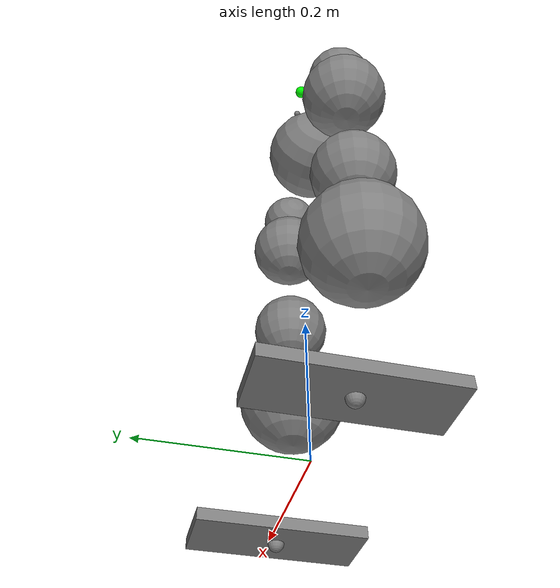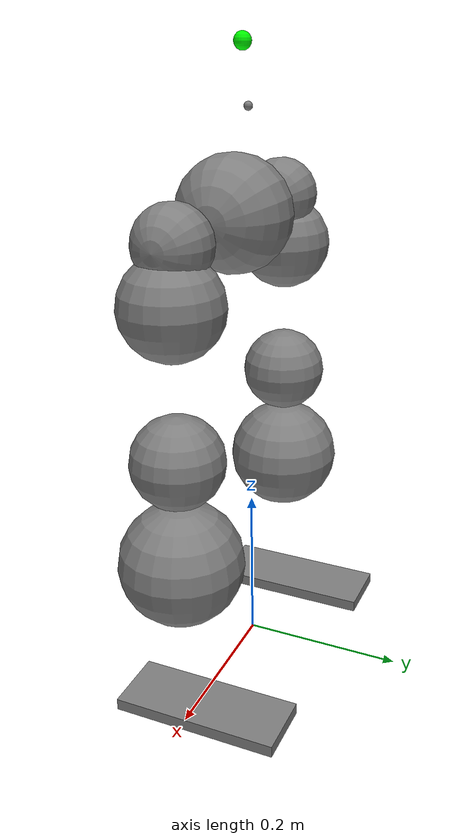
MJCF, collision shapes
<mujoco model="ch_robot_16kg_actuated">
  <compiler angle="radian"/>

  <option timestep="0.005" integrator="implicitfast" cone="elliptic"/>

  <default>
    <joint limited="true" damping="1"/>
    <default class="visual">
      <geom type="mesh" contype="0" conaffinity="0" group="2"/>
    </default>
    <default class="collision">
      <geom group="3"/>
    </default>
  </default>

  <asset>
    <material name="metal_silver" specular="1" shininess="1" reflectance="0.5" rgba="0.55 0.55 0.6 1"/>
    <mesh name="hip" file="/home/thewheelneedsme/Projects/droids/simulation/mjlab/src/mjlab/asset_zoo/robots/triton_robot/meshes/hip_ch.stl" scale="0.001 0.001 0.001"/>
    <mesh name="left_leg1" file="/home/thewheelneedsme/Projects/droids/simulation/mjlab/src/mjlab/asset_zoo/robots/triton_robot/meshes/left_leg1_ch.stl" scale="0.001 0.001 0.001"/>
    <mesh name="left_leg2" file="/home/thewheelneedsme/Projects/droids/simulation/mjlab/src/mjlab/asset_zoo/robots/triton_robot/meshes/left_leg2_ch.stl" scale="0.001 0.001 0.001"/>
    <mesh name="left_leg3" file="/home/thewheelneedsme/Projects/droids/simulation/mjlab/src/mjlab/asset_zoo/robots/triton_robot/meshes/left_leg3_ch.stl" scale="0.001 0.001 0.001"/>
    <mesh name="left_leg4" file="/home/thewheelneedsme/Projects/droids/simulation/mjlab/src/mjlab/asset_zoo/robots/triton_robot/meshes/left_leg4_ch.stl" scale="0.001 0.001 0.001"/>
    <mesh name="right_leg1" file="/home/thewheelneedsme/Projects/droids/simulation/mjlab/src/mjlab/asset_zoo/robots/triton_robot/meshes/right_leg1_ch.stl" scale="0.001 0.001 0.001"/>
    <mesh name="right_leg2" file="/home/thewheelneedsme/Projects/droids/simulation/mjlab/src/mjlab/asset_zoo/robots/triton_robot/meshes/right_leg2_ch.stl" scale="0.001 0.001 0.001"/>
    <mesh name="right_leg3" file="/home/thewheelneedsme/Projects/droids/simulation/mjlab/src/mjlab/asset_zoo/robots/triton_robot/meshes/right_leg3_ch.stl" scale="0.001 0.001 0.001"/>
    <mesh name="right_leg4" file="/home/thewheelneedsme/Projects/droids/simulation/mjlab/src/mjlab/asset_zoo/robots/triton_robot/meshes/right_leg4_ch.stl" scale="0.001 0.001 0.001"/>
    <mesh name="hip_visual" file="/home/thewheelneedsme/Projects/droids/simulation/mjlab/src/mjlab/asset_zoo/robots/triton_robot/meshes/visual/hip_dumb2.stl" scale="0.001 0.001 0.001"/>
    <mesh name="left_leg1_visual" file="/home/thewheelneedsme/Projects/droids/simulation/mjlab/src/mjlab/asset_zoo/robots/triton_robot/meshes/visual/left_leg1_dumb.stl" scale="0.001 0.001 0.001"/>
    <mesh name="left_leg2_visual" file="/home/thewheelneedsme/Projects/droids/simulation/mjlab/src/mjlab/asset_zoo/robots/triton_robot/meshes/visual/left_leg2_dumb.stl" scale="0.001 0.001 0.001"/>
    <mesh name="left_leg3_visual" file="/home/thewheelneedsme/Projects/droids/simulation/mjlab/src/mjlab/asset_zoo/robots/triton_robot/meshes/visual/left_leg3_dumb.stl" scale="0.001 0.001 0.001"/>
    <mesh name="left_leg4_visual" file="/home/thewheelneedsme/Projects/droids/simulation/mjlab/src/mjlab/asset_zoo/robots/triton_robot/meshes/visual/left_leg4_dumb.stl" scale="0.001 0.001 0.001"/>
    <mesh name="left_foot_visual" file="/home/thewheelneedsme/Projects/droids/simulation/mjlab/src/mjlab/asset_zoo/robots/triton_robot/meshes/visual/left_foot.stl" scale="0.001 0.001 0.001"/>
    <mesh name="left_foot_sole_visual" file="/home/thewheelneedsme/Projects/droids/simulation/mjlab/src/mjlab/asset_zoo/robots/triton_robot/meshes/visual/left_foot_sole.stl" scale="0.001 0.001 0.001"/>
    <mesh name="right_leg1_visual" file="/home/thewheelneedsme/Projects/droids/simulation/mjlab/src/mjlab/asset_zoo/robots/triton_robot/meshes/visual/right_leg1_dumb.stl" scale="0.001 0.001 0.001"/>
    <mesh name="right_leg2_visual" file="/home/thewheelneedsme/Projects/droids/simulation/mjlab/src/mjlab/asset_zoo/robots/triton_robot/meshes/visual/right_leg2_dumb.stl" scale="0.001 0.001 0.001"/>
    <mesh name="right_leg3_visual" file="/home/thewheelneedsme/Projects/droids/simulation/mjlab/src/mjlab/asset_zoo/robots/triton_robot/meshes/visual/right_leg3_dumb.stl" scale="0.001 0.001 0.001"/>
    <mesh name="right_leg4_visual" file="/home/thewheelneedsme/Projects/droids/simulation/mjlab/src/mjlab/asset_zoo/robots/triton_robot/meshes/visual/right_leg4_dumb.stl" scale="0.001 0.001 0.001"/>
    <mesh name="right_foot_visual" file="/home/thewheelneedsme/Projects/droids/simulation/mjlab/src/mjlab/asset_zoo/robots/triton_robot/meshes/visual/right_foot.stl" scale="0.001 0.001 0.001"/>
    <mesh name="right_foot_sole_visual" file="/home/thewheelneedsme/Projects/droids/simulation/mjlab/src/mjlab/asset_zoo/robots/triton_robot/meshes/visual/right_foot_sole.stl" scale="0.001 0.001 0.001"/>
  </asset>

  <worldbody>
    <body name="floating_base" pos="0 0 0.6846">
      <joint type="free" damping="0"/>
      <site name="imu" pos="0 0 0"/>
      <body name="torso" pos="0.1505 0.008 -0.6996">
        <inertial pos="-0.156928 -0.029496 0.666" mass="0.001" diaginertia="1e-06 1e-06 1e-06"/>
        <site name="top" pos="-0.155 -0.016 0.765" size="0.01" rgba="0 1 0 1"/>
        <body name="hip">
          <inertial pos="-0.155587 -0.02906 0.584318" quat="-0.0033003 0.706961 -0.0187819 0.706995" mass="3.46459" diaginertia="0.0169039 0.0159646 0.0104736"/>
          <geom class="collision" size="0.0695385" pos="-0.155593 -0.0294944 0.580198" quat="-4.77528e-05 0.707672 -4.78292e-05 0.706541"/>
          <geom class="visual" material="metal_silver" mesh="hip_visual"/>
          <body name="left_leg1">
            <inertial pos="-0.005945 -0.035287 0.577433" quat="0.0533097 0.705768 -0.0521611 0.704506" mass="1.17519" diaginertia="0.00181998 0.00169022 0.00139371"/>
            <joint name="left_hip1_joint" pos="-0.068372 -0.029495 0.577401" axis="1 0 0" range="-1.57 1.57" armature="0.01"/>
            <geom class="collision" size="0.0442524" pos="-0.00844983 -0.0297995 0.57741" quat="0.501224 0.50167 0.498783 0.498314"/>
            <geom class="visual" material="metal_silver" mesh="left_leg1_visual"/>
            <body name="left_leg2">
              <inertial pos="-1.8e-05 -0.025475 0.486173" quat="0.993586 -0.111729 0.00099561 0.0173992" mass="1.67771" diaginertia="0.00596914 0.00526288 0.00263573"/>
              <joint name="left_hip2_joint" pos="-4.8e-05 -0.029495 0.577401" axis="0 1 0" range="-1.57 0.436332" armature="0.01"/>
              <geom class="collision" size="0.0590525" pos="-5.0566e-05 -0.029499 0.513044" quat="0.999993 0.00363887 -3.10219e-05 -0.00014776"/>
              <geom class="visual" material="metal_silver" mesh="left_leg2_visual"/>
              <body name="left_leg3">
                <inertial pos="0.005174 -0.030248 0.318931" quat="0.99962 -0.00722951 -0.0200685 0.0174438" mass="1.85579" diaginertia="0.00551298 0.00476134 0.00256798"/>
                <joint name="left_thigh_joint" pos="-4.8e-05 -0.029495 0.463816" axis="0 0 -1" range="-0.785398 0.785398" armature="0.01"/>
                <geom class="collision" size="0.0550055" pos="0.00118305 -0.0295809 0.33455" quat="0.999951 -0.000469905 -0.00975346 0.00189168"/>
                <geom class="visual" material="metal_silver" mesh="left_leg3_visual"/>
                <body name="left_leg4">
                  <inertial pos="0.001337 -0.031134 0.183938" quat="0.657263 -0.0207294 -0.000839795 0.753376" mass="0.977646" diaginertia="0.00589315 0.00578201 0.0014593"/>
                  <joint name="left_knee_joint" pos="-4.8e-05 -0.029495 0.306338" axis="1 0 0" range="-2.0944 0" armature="0.01"/>
                  <geom class="collision" size="0.074531" pos="0.00210055 -0.0297579 0.204228" quat="0.999956 -0.000858743 -0.0019351 0.00917237"/>
                  <geom class="visual" material="metal_silver" mesh="left_leg4_visual"/>
                  <body name="left_foot">
                    <inertial pos="-0.00053 -0.020276 0.011109" quat="0.521814 0.482863 -0.48335 0.510809" mass="0.592694" diaginertia="0.00171896 0.00160316 0.000355924"/>
                    <joint name="left_ankle_joint" pos="0.00958 -0.03 0.031528" axis="1 0 0" range="-0.6 0.6" armature="0.01"/>
                    <geom name="left_foot_collision_box" class="collision" size="0.04 0.105 0.00763" pos="-0.00042 -0.005 -0.0045" type="box"/>
                    <geom class="visual" material="metal_silver" mesh="left_foot_visual"/>
                    <geom class="visual" pos="0.30958 0 0" quat="1 0 0 0" material="metal_silver" mesh="left_foot_sole_visual"/>
                    <site name="left_foot" pos="-0.00042 -0.005 -0.01213" size="0.01"/>
                    <body name="retarget_left_foot" pos="0.00958 -0.03 0.031528"/>
                  </body>
                  <body name="retarget_left_shin" pos="-4.8e-05 -0.029495 0.306338"/>
                </body>
              </body>
              <body name="retarget_left_leg" pos="-4.8e-05 -0.029495 0.577401"/>
            </body>
          </body>
          <body name="right_leg1">
            <inertial pos="-0.305326 -0.035287 0.577434" quat="-0.0521282 0.704511 0.053335 0.705764" mass="1.17908" diaginertia="0.00182607 0.00169587 0.00139837"/>
            <joint name="right_hip1_joint" pos="-0.2429 -0.029495 0.577401" axis="1 0 0" range="-1.57 1.57" armature="0.01"/>
            <geom class="collision" size="0.0454332" pos="-0.300838 -0.0297882 0.578168" quat="0.483502 0.52001 0.518441 0.47648"/>
            <geom class="visual" material="metal_silver" mesh="right_leg1_visual"/>
            <body name="right_leg2">
              <inertial pos="-0.311252 -0.025506 0.485714" quat="0.993727 -0.110476 -0.0009949 -0.0173641" mass="1.67772" diaginertia="0.00597226 0.00526962 0.0026203"/>
              <joint name="right_hip2_joint" pos="-0.311223 -0.029495 0.577401" axis="0 1 0" range="-0.436332 1.57" armature="0.01"/>
              <geom class="collision" size="0.0590869" pos="-0.31122 -0.029499 0.51288" quat="0.999993 0.003613 3.09461e-05 0.000147705"/>
              <geom class="visual" material="metal_silver" mesh="right_leg2_visual"/>
              <body name="right_leg3">
                <inertial pos="-0.317293 -0.030266 0.31875" quat="0.99959 -0.00751447 0.0228341 -0.0155304" mass="1.84432" diaginertia="0.00550942 0.00469234 0.00254964"/>
                <joint name="right_thigh_joint" pos="-0.311223 -0.029495 0.463816" axis="0 0 1" range="-0.785398 0.785398" armature="0.01"/>
                <geom class="collision" size="0.0550889" pos="-0.311776 -0.0295792 0.334119" quat="0.999981 -0.000441715 0.00582548 -0.00203739"/>
                <geom class="visual" material="metal_silver" mesh="right_leg3_visual"/>
                <body name="right_leg4">
                  <inertial pos="-0.312608 -0.031134 0.183938" quat="0.753376 0.000839794 0.0207294 0.657263" mass="0.962738" diaginertia="0.00580329 0.00569384 0.00143705"/>
                  <joint name="right_knee_joint" pos="-0.311223 -0.029495 0.306338" axis="1 0 0" range="-2.0944 0" armature="0.01"/>
                  <geom class="collision" size="0.0745541" pos="-0.313377 -0.0296541 0.203857" quat="0.999963 4.04521e-05 0.00198332 -0.00838521"/>
                  <geom class="visual" material="metal_silver" mesh="right_leg4_visual"/>
                  <body name="right_foot">
                    <inertial pos="-0.310741 -0.020276 0.011109" quat="0.510809 0.48335 -0.482863 0.521814" mass="0.591536" diaginertia="0.0017156 0.00160003 0.000355229"/>
                    <joint name="right_ankle_joint" pos="-0.320851 -0.03 0.031528" axis="1 0 0" range="-0.6 0.6" armature="0.01"/>
                    <geom name="right_foot_collision_box" class="collision" size="0.04 0.105 0.00763" pos="-0.310851 -0.005 -0.0045" type="box"/>
                    <geom class="visual" material="metal_silver" mesh="right_foot_visual"/>
                    <geom class="visual" pos="-0.310851 0 0" quat="1 0 0 0" material="metal_silver" mesh="right_foot_sole_visual"/>
                    <site name="right_foot" pos="-0.310851 -0.005 -0.01213" size="0.01"/>
                    <body name="retarget_right_foot" pos="-0.320851 -0.03 0.031528"/>
                  </body>
                  <body name="retarget_right_shin" pos="-0.311223 -0.029495 0.306338"/>
                </body>
              </body>
              <body name="retarget_right_leg" pos="-0.311223 -0.029495 0.577401"/>
            </body>
          </body>
          <body name="retarget_pelvis" pos="-0.155587 -0.029495 0.577401"/>
        </body>
      </body>
    </body>
  </worldbody>

  <actuator>
    <general name="left_hip1_act" joint="left_hip1_joint" forcelimited="true" forcerange="-120 120" biastype="affine" gainprm="100" biasprm="0 -100 -1"/>
    <general name="left_hip2_act" joint="left_hip2_joint" forcelimited="true" forcerange="-120 120" biastype="affine" gainprm="100" biasprm="0 -100 -1"/>
    <general name="left_thigh_act" joint="left_thigh_joint" forcelimited="true" forcerange="-120 120" biastype="affine" gainprm="100" biasprm="0 -100 -1"/>
    <general name="left_knee_act" joint="left_knee_joint" forcelimited="true" forcerange="-120 120" biastype="affine" gainprm="80" biasprm="0 -80 -1"/>
    <general name="left_ankle_act" joint="left_ankle_joint" forcelimited="true" forcerange="-120 120" biastype="affine" gainprm="20" biasprm="0 -20 -1"/>
    <general name="right_hip1_act" joint="right_hip1_joint" forcelimited="true" forcerange="-120 120" biastype="affine" gainprm="100" biasprm="0 -100 -1"/>
    <general name="right_hip2_act" joint="right_hip2_joint" forcelimited="true" forcerange="-120 120" biastype="affine" gainprm="100" biasprm="0 -100 -1"/>
    <general name="right_thigh_act" joint="right_thigh_joint" forcelimited="true" forcerange="-120 120" biastype="affine" gainprm="100" biasprm="0 -100 -1"/>
    <general name="right_knee_act" joint="right_knee_joint" forcelimited="true" forcerange="-120 120" biastype="affine" gainprm="80" biasprm="0 -80 -1"/>
    <general name="right_ankle_act" joint="right_ankle_joint" forcelimited="true" forcerange="-120 120" biastype="affine" gainprm="20" biasprm="0 -20 -1"/>
  </actuator>
</mujoco>
